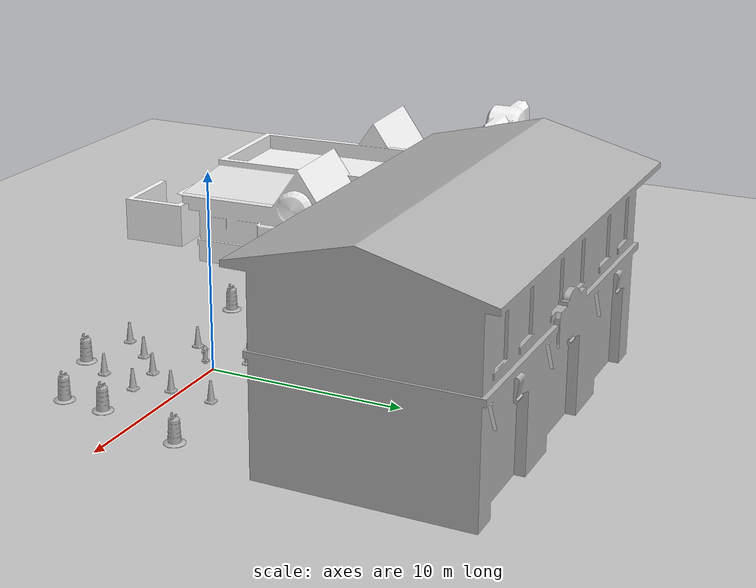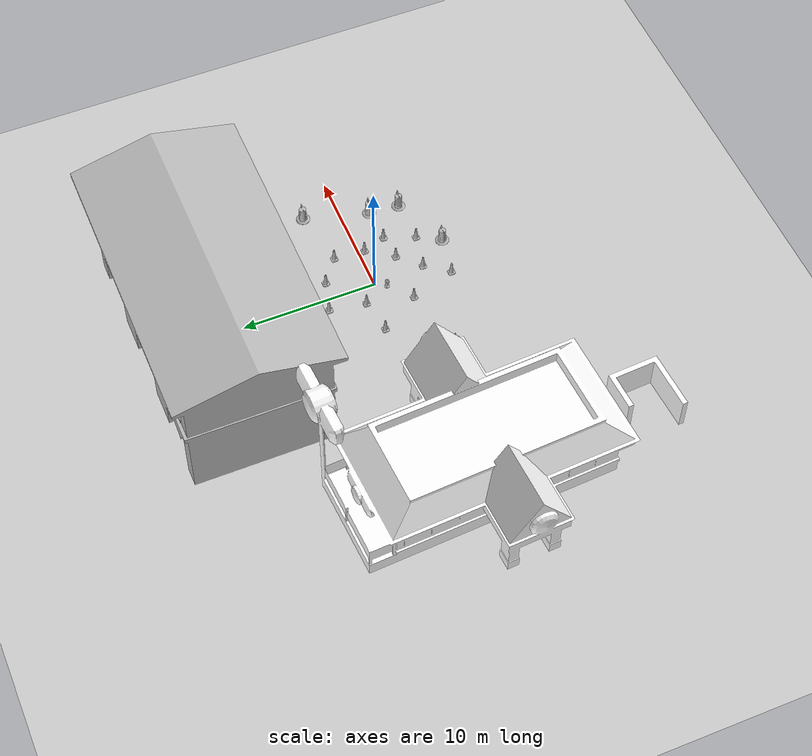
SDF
<sdf version="1.7">
 <world name="default">
  <light name="sun" type="directional">
   <pose>0 0 10 0 -0 0</pose>
   <diffuse>0.8 0.8 0.8 1</diffuse>
   <specular>0.2 0.2 0.2 1</specular>
   <attenuation>
    <range>1000</range>
    <constant>0.9</constant>
    <linear>0.01</linear>
    <quadratic>0.001</quadratic>
   </attenuation>
   <direction>-0.5 0.1 -0.9</direction>
   <spot><inner_angle>0</inner_angle><outer_angle>0</outer_angle><falloff>0</falloff></spot>
  </light>
  <model name="ground_plane">
   <static>1</static>
   <link name="link">
    <collision name="collision">
     <geometry><plane><normal>0 0 1</normal><size>100 100</size></plane></geometry>
     <surface>
      <contact><collide_bitmask>65535</collide_bitmask></contact>
      <friction><ode><mu>100</mu><mu2>50</mu2></ode></friction>
     </surface>
    </collision>
    <visual name="visual">
     <cast_shadows>0</cast_shadows>
     <geometry><plane><normal>0 0 1</normal><size>100 100</size></plane></geometry>
     <material>
      <script><uri>file://media/materials/scripts/gazebo.material</uri><name>Gazebo/Grey</name></script>
     </material>
    </visual>
   </link>
  </model>
  <gravity>0 0 -9.8</gravity>
  <magnetic_field>6e-06 2.3e-05 -4.2e-05</magnetic_field>
  <atmosphere type="adiabatic"/>
  <physics type="ode">
   <max_step_size>0.001</max_step_size>
   <real_time_factor>1</real_time_factor>
   <real_time_update_rate>1000</real_time_update_rate>
  </physics>
  <scene><ambient>0.4 0.4 0.4 1</ambient><background>0.7 0.7 0.7 1</background><shadows>1</shadows></scene>
  <spherical_coordinates>
   <surface_model>EARTH_WGS84</surface_model>
   <latitude_deg>0</latitude_deg>
   <longitude_deg>0</longitude_deg>
   <elevation>0</elevation>
   <heading_deg>0</heading_deg>
  </spherical_coordinates>
  <model name="fire_hydrant">
   <static>1</static>
   <link name="link">
    <collision name="collision">
     <geometry><mesh><uri>model://fire_hydrant/meshes/fire_hydrant.dae</uri></mesh></geometry>
    </collision>
    <visual name="visual">
     <geometry><mesh><uri>model://fire_hydrant/meshes/fire_hydrant.dae</uri></mesh></geometry>
    </visual>
   </link>
   <pose>-0.499028 -0.726262 0 0 -0 0</pose>
  </model>
  <model name="fire_station">
   <static>1</static>
   <link name="link">
    <collision name="main">
     <pose>0 -0.135 5 0 -0 0</pose>
     <geometry><box><size>19.98 9.68 10</size></box></geometry>
    </collision>
    <collision name="front_top">
     <pose>0 4.957 7 0 -0 0</pose>
     <geometry><box><size>20 0.515 6</size></box></geometry>
    </collision>
    <collision name="column_0">
     <pose>9.333 4.957 2 0 -0 0</pose>
     <geometry><box><size>1.315 0.515 4</size></box></geometry>
    </collision>
    <collision name="column_1">
     <pose>3.33 4.957 2 0 -0 0</pose>
     <geometry><box><size>2.63 0.515 4</size></box></geometry>
    </collision>
    <collision name="column_2">
     <pose>-3.33 4.957 2 0 -0 0</pose>
     <geometry><box><size>2.63 0.515 4</size></box></geometry>
    </collision>
    <collision name="column_3">
     <pose>-9.333 4.957 2 0 -0 0</pose>
     <geometry><box><size>1.315 0.515 4</size></box></geometry>
    </collision>
    <collision name="roof_back">
     <pose>0 -2.742 10.467 0.25 -0 0</pose>
     <geometry><box><size>21.47 6.12 0.28</size></box></geometry>
    </collision>
    <collision name="roof_front">
     <pose>0 3.12 10.467 -0.25 0 0</pose>
     <geometry><box><size>21.47 6.12 0.28</size></box></geometry>
    </collision>
    <collision name="roof_base">
     <pose>0 0.188 9.705 0 -0 0</pose>
     <geometry><box><size>21.47 11.86 0.28</size></box></geometry>
    </collision>
    <collision name="roof_filling_0">
     <pose>0 0.188 9.985 0 -0 0</pose>
     <geometry><box><size>21.47 9.53 0.28</size></box></geometry>
    </collision>
    <collision name="roof_filling_1">
     <pose>0 0.188 10.14 0 -0 0</pose>
     <geometry><box><size>21.47 8.41 0.28</size></box></geometry>
    </collision>
    <collision name="roof_filling_2">
     <pose>0 0.188 10.42 0 -0 0</pose>
     <geometry><box><size>21.47 6.25 0.28</size></box></geometry>
    </collision>
    <collision name="roof_filling_3">
     <pose>0 0.188 10.7 0 -0 0</pose>
     <geometry><box><size>21.47 4.05 0.28</size></box></geometry>
    </collision>
    <collision name="roof_filling_4">
     <pose>0 0.188 10.98 0 -0 0</pose>
     <geometry><box><size>21.47 1.83 0.28</size></box></geometry>
    </collision>
    <visual name="visual">
     <geometry><mesh><uri>model://fire_station/meshes/fire_station.dae</uri></mesh></geometry>
    </visual>
   </link>
   <pose>-0.842527 12.207 0 0 -0 0</pose>
  </model>
  <model name="Fast Food">
   <static>1</static>
   <link name="link">
    <pose>0 0 3.15931 0 -0 0</pose>
    <collision name="collision">
     <geometry><mesh><scale>3 3 2</scale><uri>model://fast_food/meshes/fast_food.dae</uri></mesh></geometry>
    </collision>
    <visual name="visual">
     <geometry><mesh><scale>3 3 2</scale><uri>model://fast_food/meshes/fast_food.dae</uri></mesh></geometry>
     <material>
      <script>
       <uri>model://fast_food/materials/scripts</uri>
       <uri>model://fast_food/materials/textures</uri>
       <name>FastFood/Diffuse</name>
      </script>
      <shader type="normal_map_tangent_space"><normal_map>FastFood_Normal.png</normal_map></shader>
     </material>
    </visual>
   </link>
   <pose>-17.273 -0.798812 0 0 -0 1.62323</pose>
  </model>
  <model name="Construction Cone">
   <link name="link">
    <collision name="collision">
     <geometry>
      <mesh><scale>10 10 10</scale><uri>model://construction_cone/meshes/construction_cone.dae</uri></mesh>
     </geometry>
    </collision>
    <visual name="visual">
     <geometry>
      <mesh><scale>10 10 10</scale><uri>model://construction_cone/meshes/construction_cone.dae</uri></mesh>
     </geometry>
    </visual>
    <inertial>
     <inertia><ixx>1</ixx><ixy>0</ixy><ixz>0</ixz><iyy>1</iyy><iyz>0</iyz><izz>1</izz></inertia>
     <mass>1</mass>
    </inertial>
   </link>
   <pose>2.8331 -4.3947 -0 0 -0 0</pose>
  </model>
  <model name="Construction Cone_0">
   <link name="link">
    <collision name="collision">
     <geometry>
      <mesh><scale>10 10 10</scale><uri>model://construction_cone/meshes/construction_cone.dae</uri></mesh>
     </geometry>
    </collision>
    <visual name="visual">
     <geometry>
      <mesh><scale>10 10 10</scale><uri>model://construction_cone/meshes/construction_cone.dae</uri></mesh>
     </geometry>
    </visual>
    <inertial>
     <inertia><ixx>1</ixx><ixy>0</ixy><ixz>0</ixz><iyy>1</iyy><iyz>0</iyz><izz>1</izz></inertia>
     <mass>1</mass>
    </inertial>
   </link>
   <pose>-1.34455 1.18993 -0 0 -1e-06 0</pose>
  </model>
  <model name="Construction Cone_1">
   <link name="link">
    <collision name="collision">
     <geometry>
      <mesh><scale>10 10 10</scale><uri>model://construction_cone/meshes/construction_cone.dae</uri></mesh>
     </geometry>
    </collision>
    <visual name="visual">
     <geometry>
      <mesh><scale>10 10 10</scale><uri>model://construction_cone/meshes/construction_cone.dae</uri></mesh>
     </geometry>
    </visual>
    <inertial>
     <inertia><ixx>1</ixx><ixy>0</ixy><ixz>0</ixz><iyy>1</iyy><iyz>0</iyz><izz>1</izz></inertia>
     <mass>1</mass>
    </inertial>
   </link>
   <pose>0.21443 -3.83753 -8e-06 1e-06 -0 0</pose>
  </model>
  <model name="Construction Cone_2">
   <link name="link">
    <collision name="collision">
     <geometry>
      <mesh><scale>10 10 10</scale><uri>model://construction_cone/meshes/construction_cone.dae</uri></mesh>
     </geometry>
    </collision>
    <visual name="visual">
     <geometry>
      <mesh><scale>10 10 10</scale><uri>model://construction_cone/meshes/construction_cone.dae</uri></mesh>
     </geometry>
    </visual>
    <inertial>
     <inertia><ixx>1</ixx><ixy>0</ixy><ixz>0</ixz><iyy>1</iyy><iyz>0</iyz><izz>1</izz></inertia>
     <mass>1</mass>
    </inertial>
   </link>
   <pose>3.69558 -2.1785 -0 0 -0 0</pose>
  </model>
  <model name="Construction Cone_3">
   <link name="link">
    <collision name="collision">
     <geometry>
      <mesh><scale>10 10 10</scale><uri>model://construction_cone/meshes/construction_cone.dae</uri></mesh>
     </geometry>
    </collision>
    <visual name="visual">
     <geometry>
      <mesh><scale>10 10 10</scale><uri>model://construction_cone/meshes/construction_cone.dae</uri></mesh>
     </geometry>
    </visual>
    <inertial>
     <inertia><ixx>1</ixx><ixy>0</ixy><ixz>0</ixz><iyy>1</iyy><iyz>0</iyz><izz>1</izz></inertia>
     <mass>1</mass>
    </inertial>
   </link>
   <pose>1.7387 -2.34008 -0 1e-06 -0 0</pose>
  </model>
  <model name="Construction Cone_4">
   <link name="link">
    <collision name="collision">
     <geometry>
      <mesh><scale>10 10 10</scale><uri>model://construction_cone/meshes/construction_cone.dae</uri></mesh>
     </geometry>
    </collision>
    <visual name="visual">
     <geometry>
      <mesh><scale>10 10 10</scale><uri>model://construction_cone/meshes/construction_cone.dae</uri></mesh>
     </geometry>
    </visual>
    <inertial>
     <inertia><ixx>1</ixx><ixy>0</ixy><ixz>0</ixz><iyy>1</iyy><iyz>0</iyz><izz>1</izz></inertia>
     <mass>1</mass>
    </inertial>
   </link>
   <pose>3.27691 1.84513 -0 0 -0 0</pose>
  </model>
  <model name="Construction Cone_5">
   <link name="link">
    <collision name="collision">
     <geometry>
      <mesh><scale>10 10 10</scale><uri>model://construction_cone/meshes/construction_cone.dae</uri></mesh>
     </geometry>
    </collision>
    <visual name="visual">
     <geometry>
      <mesh><scale>10 10 10</scale><uri>model://construction_cone/meshes/construction_cone.dae</uri></mesh>
     </geometry>
    </visual>
    <inertial>
     <inertia><ixx>1</ixx><ixy>0</ixy><ixz>0</ixz><iyy>1</iyy><iyz>0</iyz><izz>1</izz></inertia>
     <mass>1</mass>
    </inertial>
   </link>
   <pose>3.09471 -0.44148 -0 0 -0 0</pose>
  </model>
  <model name="Construction Cone_6">
   <link name="link">
    <collision name="collision">
     <geometry>
      <mesh><scale>10 10 10</scale><uri>model://construction_cone/meshes/construction_cone.dae</uri></mesh>
     </geometry>
    </collision>
    <visual name="visual">
     <geometry>
      <mesh><scale>10 10 10</scale><uri>model://construction_cone/meshes/construction_cone.dae</uri></mesh>
     </geometry>
    </visual>
    <inertial>
     <inertia><ixx>1</ixx><ixy>0</ixy><ixz>0</ixz><iyy>1</iyy><iyz>0</iyz><izz>1</izz></inertia>
     <mass>1</mass>
    </inertial>
   </link>
   <pose>-0.878756 3.8715 -1e-05 0 -0 0</pose>
  </model>
  <model name="Construction Cone_7">
   <link name="link">
    <collision name="collision">
     <geometry>
      <mesh><scale>10 10 10</scale><uri>model://construction_cone/meshes/construction_cone.dae</uri></mesh>
     </geometry>
    </collision>
    <visual name="visual">
     <geometry>
      <mesh><scale>10 10 10</scale><uri>model://construction_cone/meshes/construction_cone.dae</uri></mesh>
     </geometry>
    </visual>
    <inertial>
     <inertia><ixx>1</ixx><ixy>0</ixy><ixz>0</ixz><iyy>1</iyy><iyz>0</iyz><izz>1</izz></inertia>
     <mass>1</mass>
    </inertial>
   </link>
   <pose>1.43823 3.21936 -0 0 -1e-06 0</pose>
  </model>
  <model name="Construction Cone_8">
   <link name="link">
    <collision name="collision">
     <geometry>
      <mesh><scale>10 10 10</scale><uri>model://construction_cone/meshes/construction_cone.dae</uri></mesh>
     </geometry>
    </collision>
    <visual name="visual">
     <geometry>
      <mesh><scale>10 10 10</scale><uri>model://construction_cone/meshes/construction_cone.dae</uri></mesh>
     </geometry>
    </visual>
    <inertial>
     <inertia><ixx>1</ixx><ixy>0</ixy><ixz>0</ixz><iyy>1</iyy><iyz>0</iyz><izz>1</izz></inertia>
     <mass>1</mass>
    </inertial>
   </link>
   <pose>-2.12339 -2.14662 -0 0 -1e-06 0</pose>
  </model>
  <model name="Construction Cone_9">
   <link name="link">
    <collision name="collision">
     <geometry>
      <mesh><scale>10 10 10</scale><uri>model://construction_cone/meshes/construction_cone.dae</uri></mesh>
     </geometry>
    </collision>
    <visual name="visual">
     <geometry>
      <mesh><scale>10 10 10</scale><uri>model://construction_cone/meshes/construction_cone.dae</uri></mesh>
     </geometry>
    </visual>
    <inertial>
     <inertia><ixx>1</ixx><ixy>0</ixy><ixz>0</ixz><iyy>1</iyy><iyz>0</iyz><izz>1</izz></inertia>
     <mass>1</mass>
    </inertial>
   </link>
   <pose>-3.93533 0.801576 -1e-05 0 -0 0</pose>
  </model>
  <model name="Construction Cone_10">
   <link name="link">
    <collision name="collision">
     <geometry>
      <mesh><scale>10 10 10</scale><uri>model://construction_cone/meshes/construction_cone.dae</uri></mesh>
     </geometry>
    </collision>
    <visual name="visual">
     <geometry>
      <mesh><scale>10 10 10</scale><uri>model://construction_cone/meshes/construction_cone.dae</uri></mesh>
     </geometry>
    </visual>
    <inertial>
     <inertia><ixx>1</ixx><ixy>0</ixy><ixz>0</ixz><iyy>1</iyy><iyz>0</iyz><izz>1</izz></inertia>
     <mass>1</mass>
    </inertial>
   </link>
   <pose>-1.06964 -5.51775 -0 0 -0 0</pose>
  </model>
  <model name="Construction Barrel">
   <link name="link">
    <inertial>
     <pose>0 0 0.4 0 -0 0</pose>
     <mass>500</mass>
     <inertia><ixx>51.2096</ixx><iyy>51.2096</iyy><izz>25</izz><ixy>0</ixy><ixz>0</ixz><iyz>0</iyz></inertia>
    </inertial>
    <collision name="collision">
     <geometry><mesh><uri>model://construction_barrel/meshes/construction_barrel.dae</uri></mesh></geometry>
    </collision>
    <visual name="visual">
     <geometry><mesh><uri>model://construction_barrel/meshes/construction_barrel.dae</uri></mesh></geometry>
    </visual>
   </link>
   <pose>-7.26663 -3.16426 -0 0 -0 -1.3e-05</pose>
  </model>
  <model name="Construction Barrel_0">
   <link name="link">
    <inertial>
     <pose>0 0 0.4 0 -0 0</pose>
     <mass>500</mass>
     <inertia><ixx>51.2096</ixx><iyy>51.2096</iyy><izz>25</izz><ixy>0</ixy><ixz>0</ixz><iyz>0</iyz></inertia>
    </inertial>
    <collision name="collision">
     <geometry><mesh><uri>model://construction_barrel/meshes/construction_barrel.dae</uri></mesh></geometry>
    </collision>
    <visual name="visual">
     <geometry><mesh><uri>model://construction_barrel/meshes/construction_barrel.dae</uri></mesh></geometry>
    </visual>
   </link>
   <pose>1.9165 -6.076 -2e-06 -5e-06 -4e-06 -1e-05</pose>
  </model>
  <model name="Construction Barrel_1">
   <link name="link">
    <inertial>
     <pose>0 0 0.4 0 -0 0</pose>
     <mass>500</mass>
     <inertia><ixx>51.2096</ixx><iyy>51.2096</iyy><izz>25</izz><ixy>0</ixy><ixz>0</ixz><iyz>0</iyz></inertia>
    </inertial>
    <collision name="collision">
     <geometry><mesh><uri>model://construction_barrel/meshes/construction_barrel.dae</uri></mesh></geometry>
    </collision>
    <visual name="visual">
     <geometry><mesh><uri>model://construction_barrel/meshes/construction_barrel.dae</uri></mesh></geometry>
    </visual>
   </link>
   <pose>6.10817 -4.36023 -2e-06 7e-06 -2e-06 -9e-06</pose>
  </model>
  <model name="Construction Barrel_2">
   <link name="link">
    <inertial>
     <pose>0 0 0.4 0 -0 0</pose>
     <mass>500</mass>
     <inertia><ixx>51.2096</ixx><iyy>51.2096</iyy><izz>25</izz><ixy>0</ixy><ixz>0</ixz><iyz>0</iyz></inertia>
    </inertial>
    <collision name="collision">
     <geometry><mesh><uri>model://construction_barrel/meshes/construction_barrel.dae</uri></mesh></geometry>
    </collision>
    <visual name="visual">
     <geometry><mesh><uri>model://construction_barrel/meshes/construction_barrel.dae</uri></mesh></geometry>
    </visual>
   </link>
   <pose>6.28454 -2.09814 -0 0 0 -8e-06</pose>
  </model>
  <model name="Construction Barrel_3">
   <link name="link">
    <inertial>
     <pose>0 0 0.4 0 -0 0</pose>
     <mass>500</mass>
     <inertia><ixx>51.2096</ixx><iyy>51.2096</iyy><izz>25</izz><ixy>0</ixy><ixz>0</ixz><iyz>0</iyz></inertia>
    </inertial>
    <collision name="collision">
     <geometry><mesh><uri>model://construction_barrel/meshes/construction_barrel.dae</uri></mesh></geometry>
    </collision>
    <visual name="visual">
     <geometry><mesh><uri>model://construction_barrel/meshes/construction_barrel.dae</uri></mesh></geometry>
    </visual>
   </link>
   <pose>3.75734 6.05728 -2e-06 4e-06 9e-06 -7e-06</pose>
  </model>
  <model name="Construction Barrel_4">
   <link name="link">
    <inertial>
     <pose>0 0 0.4 0 -0 0</pose>
     <mass>500</mass>
     <inertia><ixx>51.2096</ixx><iyy>51.2096</iyy><izz>25</izz><ixy>0</ixy><ixz>0</ixz><iyz>0</iyz></inertia>
    </inertial>
    <collision name="collision">
     <geometry><mesh><uri>model://construction_barrel/meshes/construction_barrel.dae</uri></mesh></geometry>
    </collision>
    <visual name="visual">
     <geometry><mesh><uri>model://construction_barrel/meshes/construction_barrel.dae</uri></mesh></geometry>
    </visual>
   </link>
   <pose>7.62683 2.60052 -3e-06 -6e-06 -5e-06 -4e-06</pose>
  </model>
 </world>
</sdf>
